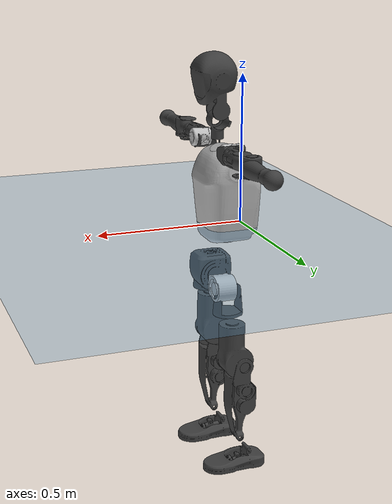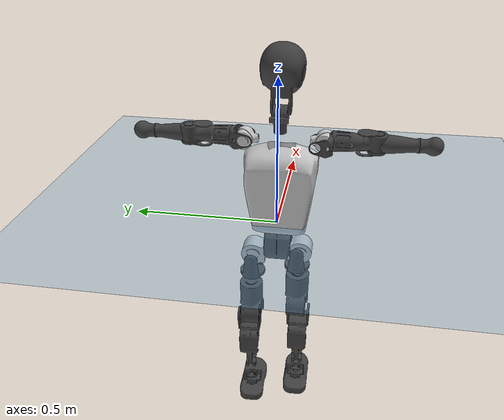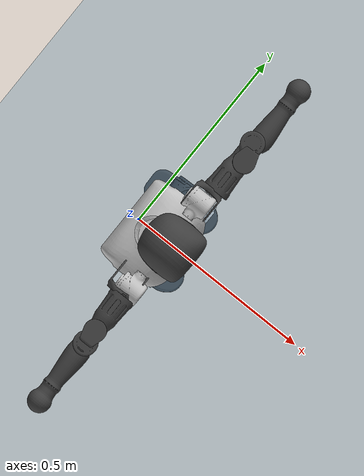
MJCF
<mujoco model="T1">
  <compiler angle="radian" assetdir="assets" balanceinertia="true" inertiafromgeom="false"/>

  <option timestep="0.005" density="1.2" viscosity="2e-05"/>

  <size nkey="1"/>

  <visual>
    <quality shadowsize="8192"/>
    <map shadowclip="0.5"/>
  </visual>

  <default>
    <default class="/">
      <joint armature="0.01" damping="0.01" frictionloss="0.1"/>
      <geom contype="0" conaffinity="0" group="1" solref="-1000 -80"/>
      <site size="0.01 0.005 0.005" group="5"/>
      <general forcelimited="true" biastype="affine" gainprm="25" biasprm="0 -25 -0.6"/>
      <default class="t1">
        <geom rgba="0.25 0.25 0.25 1"/>
        <default class="visual">
          <geom type="mesh" group="2"/>
        </default>
        <default class="collision">
          <geom group="3"/>
        </default>
        <default class="foot">
          <geom size="0.1115 0.05 0.015" type="box" condim="6" group="4" priority="1" solimp="0.015 1 0.015"/>
        </default>
        <default class="reward_collision_sphere">
          <geom group="5" rgba="1 0 0 1"/>
        </default>
      </default>
    </default>
  </default>

  <asset>
    <texture type="skybox" colorspace="auto" name="//unnamed_texture_0" builtin="gradient" rgb1="0.95 0.95 0.95" rgb2="0.95 0.95 0.95" width="100" height="600"/>
    <texture type="2d" colorspace="auto" name="texplane" builtin="checker" rgb1="0.345 0.575 0.748" rgb2="0.345 0.575 0.748" markrgb="1 1 1" width="512" height="512"/>
    <material name="MatPlane" class="/" texture="texplane" texuniform="true" texrepeat="2 2" specular="0.9"/>
    <mesh name="Trunk" class="/" file="Trunk.stl"/>
    <mesh name="H1" class="/" file="H1.stl"/>
    <mesh name="H2" class="/" file="H2.stl"/>
    <mesh name="AL1" class="/" file="AL1.stl"/>
    <mesh name="AL2" class="/" file="AL2.stl"/>
    <mesh name="AL3" class="/" file="AL3.stl"/>
    <mesh name="left_hand_link" class="/" file="left_hand_link.stl"/>
    <mesh name="AR1" class="/" file="AR1.stl"/>
    <mesh name="AR2" class="/" file="AR2.stl"/>
    <mesh name="AR3" class="/" file="AR3.stl"/>
    <mesh name="right_hand_link" class="/" file="right_hand_link.stl"/>
    <mesh name="Waist" class="/" file="Waist.stl"/>
    <mesh name="Hip_Pitch_Left" class="/" file="Hip_Pitch_Left.stl"/>
    <mesh name="Hip_Roll_Left" class="/" file="Hip_Roll_Left.stl"/>
    <mesh name="Hip_Yaw_Left" class="/" file="Hip_Yaw_Left.stl"/>
    <mesh name="Shank_Left" class="/" file="Shank_Left.stl"/>
    <mesh name="Ankle_Cross_Left" class="/" file="Ankle_Cross_Left.stl"/>
    <mesh name="left_foot_link" class="/" file="left_foot_link.stl"/>
    <mesh name="Hip_Pitch_Right" class="/" file="Hip_Pitch_Right.stl"/>
    <mesh name="Hip_Roll_Right" class="/" file="Hip_Roll_Right.stl"/>
    <mesh name="Hip_Yaw_Right" class="/" file="Hip_Yaw_Right.stl"/>
    <mesh name="Shank_Right" class="/" file="Shank_Right.stl"/>
    <mesh name="Ankle_Cross_Right" class="/" file="Ankle_Cross_Right.stl"/>
    <mesh name="right_foot_link" class="/" file="right_foot_link.stl"/>
  </asset>

  <worldbody>
    <geom name="floor" class="/" size="100 100 0.125" type="plane" group="0" material="MatPlane"/>
    <light name="toplight_shadow" class="/" pos="0 0 5" dir="0.0990148 0.0990148 -0.990148" type="directional" ambient="0.04 0.04 0.04" diffuse="0.55 0.55 0.55" specular="0.12 0.12 0.12"/>
    <light name="toplight_fill" class="/" pos="0 0 5" dir="0.0990148 0.0990148 -0.990148" type="directional" castshadow="false" ambient="0.04 0.04 0.04" diffuse="0.3 0.3 0.3" specular="0.08 0.08 0.08"/>
    <body name="trunk" childclass="t1" pos="-0.000511315 -0.00532504 -0.0127411" quat="1 0.000138463 -0.000105622 -6.33144e-05">
      <inertial pos="0.0857399 0.0108642 0.125941" quat="0.998184 -0.00707905 -0.0450145 0.0393995" mass="20.3357" diaginertia="0.693441 0.020281 0.184839"/>
      <joint name="//unnamed_joint_0" type="free" armature="0" damping="0" frictionloss="0"/>
      <geom name="//unnamed_geom_1" class="visual" rgba="0.76 0.76 0.76 1" mesh="Trunk"/>
      <geom name="//unnamed_geom_2" class="collision" size="0.0869172 0.11589 0.173834" pos="0.090741 0 0.147563" type="box"/>
      <geom name="//unnamed_geom_3" class="reward_collision_sphere" size="0.133273" pos="0.090741 0 0.122969"/>
      <geom name="//unnamed_geom_4" class="reward_collision_sphere" size="0.0173834" pos="0.090741 0.0624449 0"/>
      <geom name="//unnamed_geom_5" class="reward_collision_sphere" size="0.0173834" pos="0.090741 -0.0624449 0"/>
      <geom name="//unnamed_geom_6" class="reward_collision_sphere" size="0.0173834" pos="0.090741 0.0786071 0.221344"/>
      <geom name="//unnamed_geom_7" class="reward_collision_sphere" size="0.0173834" pos="0.090741 -0.0786071 0.221344"/>
      <site name="imu" pos="0.00273701 -0.0718682 0.0420412" size="0.011589"/>
      <camera name="track" pos="0 -1.46929 0" quat="0.707107 0.707107 0 0" mode="trackcom"/>
      <camera name="ego_camera" pos="0.184507 0 0.51647" quat="-0.5 -0.5 0.5 0.5"/>
      <body name="H1" pos="0.0894226 0.00994286 0.305903" quat="0.999975 -0.00354815 -0.000625995 -0.0060385">
        <inertial pos="-0.000604664 0.00292782 0.0620695" quat="0.784218 -0.0152226 -0.0155193 0.620104" mass="0.888009" diaginertia="0.00232891 4.58326e-05 0.000496208"/>
        <joint name="AAHead_yaw" pos="0 0 0" axis="-0.0315848 -0.0199377 0.999302" stiffness="0.0026698" range="-1.73942 1.24652" armature="0.0129731" damping="0.070755" frictionloss="0.180342"/>
        <geom name="//unnamed_geom_8" class="visual" mesh="H1"/>
        <body name="H2" pos="-0.00249656 -0.00325181 0.0937112" quat="0.999963 0.00490495 0.00626398 -0.00337648">
          <inertial pos="0.0203545 -0.0108562 0.10861" quat="0.979465 0.157098 -0.0806148 -0.0973103" mass="0.952323" diaginertia="0.0154712 0.000379287 0.00495683"/>
          <joint name="Head_pitch" pos="0 0 0" axis="-0.0532586 -0.998036 0.0329833" stiffness="0.0553953" range="-1.33891 0.31942" armature="0.0105871" damping="0.00372822" frictionloss="0.104194"/>
          <geom name="//unnamed_geom_9" class="visual" mesh="H2"/>
          <geom name="//unnamed_geom_10" class="collision" size="0.0927116" pos="0.0151235 0 0.135266"/>
          <geom name="//unnamed_geom_11" class="reward_collision_sphere" size="0.104301" pos="0.030247 0 0.122969"/>
        </body>
      </body>
      <body name="AL1" pos="0.0893799 0.0831536 0.280806" quat="0.999999 -0.000589853 0.00109621 0.000856729">
        <inertial pos="-0.0082458 0.0434404 -0.000424764" quat="0.495469 0.513917 -0.446763 0.539261" mass="0.914777" diaginertia="0.013944 0.000318564 0.000982662"/>
        <joint name="Left_Shoulder_Pitch" pos="0 0 0" axis="0.0501464 0.998708 -0.00822889" stiffness="0.0506154" range="-3.62077 1.21289" armature="0.0190098" damping="0.0588842" frictionloss="0.168344"/>
        <geom name="//unnamed_geom_12" class="visual" rgba="0.76 0.76 0.76 1" mesh="AL1"/>
        <body name="AL2" pos="0.00229535 0.0375965 -0.000244366" quat="0.999972 -0.00183823 -0.00714272 -0.00130804">
          <inertial pos="-0.0107598 0.0178061 0.000613472" quat="0.505857 0.49142 -0.519128 0.482825" mass="0.303195" diaginertia="0.00383757 9.12865e-05 0.000550642"/>
          <joint name="Left_Shoulder_Roll" pos="0 0 0" axis="-0.999977 0.00684958 -0.000240802" stiffness="0.026332" range="-1.58666 1.85208" armature="0.00489038" damping="0" frictionloss="0.140303"/>
          <geom name="//unnamed_geom_13" class="visual" mesh="AL2"/>
          <body name="AL3" pos="0.0118715 0.0529739 -0.000186302" quat="0.999974 0.00138815 -0.00109507 0.00701783">
            <inertial pos="-0.0155666 0.0573415 -0.00966449" quat="0.729682 0.679451 -0.0713423 -0.0286482" mass="1.2622" diaginertia="0.087108 0.00168884 0.00132601"/>
            <joint name="Left_Elbow_Pitch" pos="0 0 0" axis="-0.0311463 -0.999463 0.010174" range="-2.21507 1.94046" armature="0.004231" damping="0" frictionloss="0.0204966"/>
            <geom name="//unnamed_geom_14" class="visual" mesh="AL3"/>
            <geom name="//unnamed_geom_15" class="collision" size="0.0347669 0.0869172" pos="0 0.0367323 0" quat="0.707105 0.707108 0 0" type="cylinder"/>
            <geom name="//unnamed_geom_16" class="reward_collision_sphere" size="0.0417202"/>
            <body name="left_hand_link" pos="0.0111899 0.0995749 -0.00400956" quat="0.999967 0.00555667 0.00313895 0.00498503">
              <inertial pos="0.00542516 0.0682972 -0.00246722" quat="0.689925 0.723671 0.00285474 0.0171952" mass="0.567209" diaginertia="0.0514316 0.0014478 0.000706684"/>
              <joint name="Left_Elbow_Yaw" pos="0 0 0" axis="-0.027534 0.063731 0.997587" range="-2.24685 -0.327694" armature="0.0187744" damping="0.0800599" frictionloss="0.0589487"/>
              <geom name="//unnamed_geom_17" class="visual" mesh="left_hand_link"/>
              <geom name="//unnamed_geom_18" class="collision" size="0.0347669 0.101403" pos="0 0.095504 0" quat="0.707105 0.707108 0 0" type="cylinder"/>
              <geom name="//unnamed_geom_19" class="reward_collision_sphere" size="0.0579448"/>
              <geom name="//unnamed_geom_20" class="reward_collision_sphere" size="0.0405613" pos="0 0.0808111 0"/>
              <geom name="//unnamed_geom_21" class="reward_collision_sphere" size="0.0405613" pos="0 0.157949 0"/>
            </body>
          </body>
        </body>
      </body>
      <body name="AR1" pos="0.0918588 -0.0909522 0.284471" quat="0.999999 0.00123972 -0.000157707 0.000812746">
        <inertial pos="-0.00110004 -0.0189799 -0.00185251" quat="0.501171 0.479199 -0.494911 0.523697" mass="0.724727" diaginertia="0.0111784 0.000312248 0.000851988"/>
        <joint name="Right_Shoulder_Pitch" pos="0 0 0" axis="-0.0700752 -0.996458 0.0464838" stiffness="0.0465027" range="-1.21618 3.00113" armature="0.0144951" damping="0" frictionloss="0.207719"/>
        <geom name="//unnamed_geom_22" class="visual" rgba="0.76 0.76 0.76 1" mesh="AR1"/>
        <body name="AR2" pos="-0.0171271 -0.0193016 -0.00645762" quat="1 -2.21136e-06 -0.000466502 9.41799e-05">
          <inertial pos="-0.006722 -0.0290745 -0.00314743" quat="0.494591 0.467566 -0.52625 0.509729" mass="0.162111" diaginertia="0.00259106 6.69968e-05 0.00041577"/>
          <joint name="Right_Shoulder_Roll" pos="0 0 0" axis="-0.997658 0.0683935 -0.000768944" stiffness="0.0664136" range="-1.75415 1.32105" armature="0.0145157" damping="0.0782549" frictionloss="0.0379278"/>
          <geom name="//unnamed_geom_23" class="visual" mesh="AR2"/>
          <body name="AR3" pos="0.0140322 -0.0501775 0.00925039" quat="0.999987 -0.00382029 -0.000726555 0.00315917">
            <inertial pos="0.000737834 -0.0757067 -0.00123905" quat="0.716318 0.696477 0.0393868 0.0160027" mass="1.03504" diaginertia="0.0788264 0.00213844 0.00137144"/>
            <joint name="Right_Elbow_Pitch" pos="0 0 0" axis="-0.0173852 0.999845 0.00275582" stiffness="0.0881782" range="-2.01069 2.54869" armature="0.0137404" damping="0.0295649" frictionloss="0.119046"/>
            <geom name="//unnamed_geom_24" class="visual" mesh="AR3"/>
            <geom name="//unnamed_geom_25" class="collision" size="0.0347669 0.0869172" pos="0 -0.0367323 0" quat="0.707105 0.707108 0 0" type="cylinder"/>
            <geom name="//unnamed_geom_26" class="reward_collision_sphere" size="0.0417202"/>
            <body name="right_hand_link" pos="-0.000668057 -0.108608 -0.000401628" quat="1 0.000409549 -0.000229282 -0.000202779">
              <inertial pos="0.00400422 -0.0821516 0.0165994" quat="0.694496 0.717441 -0.0205836 0.0502961" mass="0.700645" diaginertia="0.0696284 0.00210116 0.000674214"/>
              <joint name="Right_Elbow_Yaw" pos="0 0 0" axis="-0.0275464 0.053222 0.998203" range="-0.163332 2.15627" armature="0.0147927" damping="0.00599455" frictionloss="0.136752"/>
              <geom name="//unnamed_geom_27" class="visual" mesh="right_hand_link"/>
              <geom name="//unnamed_geom_28" class="collision" size="0.0347669 0.101403" pos="0 -0.095504 0" quat="0.707105 0.707108 0 0" type="cylinder"/>
              <geom name="//unnamed_geom_29" class="reward_collision_sphere" size="0.0579448"/>
              <geom name="//unnamed_geom_30" class="reward_collision_sphere" size="0.0405613" pos="0 -0.0808111 0"/>
              <geom name="//unnamed_geom_31" class="reward_collision_sphere" size="0.0405613" pos="0 -0.157949 0"/>
            </body>
          </body>
        </body>
      </body>
      <body name="Waist" pos="0.112333 0.0139976 -0.147893" quat="0.999979 -0.00135883 -0.000789699 0.00630488">
        <inertial pos="-4.48974e-06 0.0129233 0.00430376" quat="0.983415 -0.000897235 -0.181365 0.000136207" mass="4.11221" diaginertia="0.054371 0.00138915 0.0178349"/>
        <joint name="Waist" pos="0 0 0" axis="-0.049176 -0.0249243 0.998479" range="-1.53505 1.61783" armature="0.00710914" damping="0.0444503" frictionloss="0.206489"/>
        <geom name="//unnamed_geom_32" class="visual" mesh="Waist"/>
        <body name="Hip_Pitch_Left" pos="-0.00832708 0.0932227 -0.0131206" quat="0.999977 -0.00308244 -0.00595042 -0.000859827">
          <inertial pos="-0.00121072 0.000841679 -0.0226199" quat="0.970492 0.233536 0.0538732 0.0265361" mass="1.57675" diaginertia="0.0171031 0.000277278 0.00439464"/>
          <joint name="Left_Hip_Pitch" pos="0 0 0" axis="-0.013557 0.999587 -0.0253547" stiffness="0.0761753" range="-1.71177 1.42805" armature="0.0151832" damping="0" frictionloss="0.0684142"/>
          <geom name="//unnamed_geom_33" class="visual" rgba="0.76 0.76 0.76 1" mesh="Hip_Pitch_Left"/>
          <body name="Hip_Roll_Left" pos="-0.0146066 0.00432752 -0.0350631" quat="0.999963 0.00253369 0.00757552 0.00328657">
            <inertial pos="0.0169365 0.0134521 -0.0727192" quat="0.673737 -0.0400668 -0.0693385 0.734619" mass="0.538445" diaginertia="0.015092 0.000284796 0.00147342"/>
            <joint name="Left_Hip_Roll" pos="0 0 0" axis="-0.996324 0.0772032 0.0371218" stiffness="0.0111523" range="-1.31952 -0.101068" armature="0.00372774" damping="0" frictionloss="0.135782"/>
            <geom name="//unnamed_geom_34" class="visual" mesh="Hip_Roll_Left"/>
            <geom name="//unnamed_geom_35" class="reward_collision_sphere" size="0.0637393"/>
            <body name="Hip_Yaw_Left" pos="-0.0177033 0.00383741 -0.114573" quat="0.99997 -0.000512943 -0.00340777 0.00700431">
              <inertial pos="-0.0160177 0.00396315 -0.0999555" quat="0.705575 -0.0489406 -0.045936 0.70545" mass="3.76726" diaginertia="0.251822 0.00585298 0.00659444"/>
              <joint name="Left_Hip_Yaw" pos="0 0 0" axis="0.0467603 0.00925643 -0.998863" range="-1.12836 1.32145" armature="0.00921426" damping="0.0331901" frictionloss="0.0615323"/>
              <geom name="//unnamed_geom_36" class="visual" mesh="Hip_Yaw_Left"/>
              <geom name="//unnamed_geom_37" class="collision" size="0.0579448 0.0927116" type="cylinder"/>
              <body name="Shank_Left" pos="-0.0298524 0.00732556 -0.148462" quat="0.999999 -0.000756061 0.000218956 0.000969242">
                <inertial pos="-0.0226174 0.0144376 -0.156706" quat="0.997247 -0.00185823 0.00208748 0.0740966" mass="2.7784" diaginertia="0.276813 0.00781929 0.00449622"/>
                <joint name="Left_Knee_Pitch" pos="0 0 0" axis="-0.0166096 0.999844 -0.00599664" range="-0.206699 2.16516" armature="0.0109558" damping="0" frictionloss="0.0928095"/>
                <geom name="//unnamed_geom_38" class="visual" mesh="Shank_Left"/>
                <geom name="//unnamed_geom_39" class="collision" size="0.0579448 0.0869172" pos="0 0 -0.147563" type="cylinder"/>
                <geom name="//unnamed_geom_40" class="reward_collision_sphere" size="0.0753282"/>
                <body name="Ankle_Cross_Left" pos="9.19539e-05 0.000806059 -0.360056" quat="0.999987 0.00103005 -0.00468839 0.00160269">
                  <inertial pos="-0.0179047 -0.00739456 0.000124909" quat="0.443266 0.55787 0.545908 0.440773" mass="0.10135" diaginertia="0.000222234 6.66654e-06 3.46763e-05"/>
                  <joint name="Left_Ankle_Pitch" pos="0 0 0" axis="0.0198169 0.998949 -0.0413409" range="-0.727965 0.20163" armature="0.00934742" damping="0" frictionloss="0.186248"/>
                  <geom name="//unnamed_geom_41" class="visual" mesh="Ankle_Cross_Left"/>
                  <body name="left_foot_link" pos="0.00215666 -0.00997617 -0.0111655" quat="0.999995 0.00103686 0.000475787 -0.00281652">
                    <inertial pos="-0.00814539 -0.0132997 -0.0093339" quat="0.0237402 0.650014 0.0329902 0.758834" mass="1.16128" diaginertia="0.0152789 0.000407489 0.00497114"/>
                    <joint name="Left_Ankle_Roll" pos="0 0 0" axis="-0.998525 0.0263994 -0.0474471" range="-0.290966 0.127396" armature="0.00270207" damping="0" frictionloss="0.0710262"/>
                    <geom name="//unnamed_geom_42" class="visual" mesh="left_foot_link"/>
                    <geom name="left_foot" class="foot" size="0.0911985 0.0625408 0.0216276" pos="0.0151235 0 -0.0184454"/>
                    <geom name="//unnamed_geom_44" class="reward_collision_sphere" size="0.0602626" pos="0.0151235 0 -0.0184454"/>
                    <geom name="//unnamed_geom_45" class="reward_collision_sphere" size="0.0347669" pos="0.143673 -0.0168969 -0.0184454"/>
                    <geom name="//unnamed_geom_46" class="reward_collision_sphere" size="0.0347669" pos="-0.105865 -0.0168969 -0.0184454"/>
                    <site name="left_foot" class="foot" pos="0.0151235 0 -0.0184454" size="0.011589"/>
                  </body>
                </body>
              </body>
            </body>
          </body>
        </body>
        <body name="Hip_Pitch_Right" pos="-0.0138106 -0.084615 0.0127238" quat="0.999999 -0.00126049 6.01668e-06 0.000716177">
          <inertial pos="0.0153213 4.06654e-05 -0.0230605" quat="0.969629 -0.240178 0.0092428 0.0452562" mass="1.96284" diaginertia="0.0162035 0.000351322 0.00389136"/>
          <joint name="Right_Hip_Pitch" pos="0 0 0" axis="0.0116476 -0.9994 -0.0326167" stiffness="0.046986" range="-1.68633 2.00791" armature="0.00195463" damping="0.00915766" frictionloss="0.171063"/>
          <geom name="//unnamed_geom_47" class="visual" rgba="0.76 0.76 0.76 1" mesh="Hip_Pitch_Right"/>
          <body name="Hip_Roll_Right" pos="-0.00465823 0.0101364 -0.0200915" quat="0.999998 -0.000815265 0.000791441 -0.0015709">
            <inertial pos="-0.000806811 0.0157113 -0.0535457" quat="0.693183 0.0425256 0.0469608 0.717971" mass="0.683211" diaginertia="0.015891 0.000384278 0.00175851"/>
            <joint name="Right_Hip_Roll" pos="0 0 0" axis="-0.999755 0.002895 -0.0219393" stiffness="0.0339677" range="-0.128853 1.55887" armature="0.012611" damping="0" frictionloss="0.190642"/>
            <geom name="//unnamed_geom_48" class="visual" mesh="Hip_Roll_Right"/>
            <geom name="//unnamed_geom_49" class="reward_collision_sphere" size="0.0637393"/>
            <body name="Hip_Yaw_Right" pos="-0.0136168 -0.00372836 -0.101828" quat="0.999981 0.00412995 -0.00456235 0.000251063">
              <inertial pos="-0.011071 0.0170579 -0.118797" quat="0.722212 -0.0674249 -0.0224927 0.68801" mass="3.57786" diaginertia="0.250731 0.00665554 0.00961993"/>
              <joint name="Right_Hip_Yaw" pos="0 0 0" axis="-0.00883493 0.0520312 -0.998606" stiffness="0.00319353" range="-0.799612 0.729067" armature="0.0146268" damping="0" frictionloss="0.119634"/>
              <geom name="//unnamed_geom_50" class="visual" mesh="Hip_Yaw_Right"/>
              <geom name="//unnamed_geom_51" class="collision" size="0.0579448 0.0927116" type="cylinder"/>
              <body name="Shank_Right" pos="-0.0207652 -0.0102242 -0.170718" quat="1 -0.000155952 -0.00022834 0.000685206">
                <inertial pos="-0.0101368 0.000202893 -0.141964" quat="0.999568 -0.0130975 -0.0257265 -0.00543521" mass="3.32517" diaginertia="0.396676 0.00959357 0.00647467"/>
                <joint name="Right_Knee_Pitch" pos="0 0 0" axis="0.00340192 -0.999994 -0.000728387" stiffness="0.0704201" range="-2.53534 -0.172835" armature="0.0113906" damping="0" frictionloss="0.103889"/>
                <geom name="//unnamed_geom_52" class="visual" mesh="Shank_Right"/>
                <geom name="//unnamed_geom_53" class="collision" size="0.0579448 0.0869172" pos="0 0 -0.147563" type="cylinder"/>
                <geom name="//unnamed_geom_54" class="reward_collision_sphere" size="0.0753282"/>
                <body name="Ankle_Cross_Right" pos="0.00795478 0.00145728 -0.346267" quat="0.999977 -0.00414598 -0.000304822 0.005334">
                  <inertial pos="0.000534987 -0.00132136 0.00572114" quat="0.377131 0.595498 0.551974 0.44551" mass="0.137266" diaginertia="0.000328942 5.43292e-06 4.52603e-05"/>
                  <joint name="Right_Ankle_Pitch" pos="0 0 0" axis="0.000732628 -0.997732 0.0673077" stiffness="0.0679213" range="-0.590629 0.709221" armature="0.0119107" damping="0.0688369" frictionloss="0.192746"/>
                  <geom name="//unnamed_geom_55" class="visual" mesh="Ankle_Cross_Right"/>
                  <body name="right_foot_link" pos="0.000171717 -0.00159922 -0.0170162" quat="0.999991 -0.00180464 0.00122409 0.00350668">
                    <inertial pos="0.0168985 0.0120508 -0.0111156" quat="0.0169518 0.581438 0.0313064 0.812812" mass="1.0455" diaginertia="0.0229641 0.000554886 0.00762928"/>
                    <joint name="Right_Ankle_Roll" pos="0 0 0" axis="-0.999976 0.00596333 0.00339892" range="-0.326893 0.375362" armature="0.00608558" damping="0" frictionloss="0.103205"/>
                    <geom name="//unnamed_geom_56" class="visual" mesh="right_foot_link"/>
                    <geom name="right_foot" class="foot" size="0.0965828 0.0366255 0.0176796" pos="0.0151235 0 -0.0184454"/>
                    <geom name="//unnamed_geom_58" class="reward_collision_sphere" size="0.0463558"/>
                    <geom name="//unnamed_geom_59" class="reward_collision_sphere" size="0.0347669" pos="0.0151235 0 -0.0184454"/>
                    <geom name="//unnamed_geom_60" class="reward_collision_sphere" size="0.0347669" pos="0.143673 0.0168969 -0.0184454"/>
                    <geom name="//unnamed_geom_61" class="reward_collision_sphere" size="0.0347669" pos="-0.105865 0.0168969 -0.0184454"/>
                    <site name="right_foot" class="foot" pos="0.0151235 0 -0.0184454" size="0.011589"/>
                  </body>
                </body>
              </body>
            </body>
          </body>
        </body>
      </body>
    </body>
  </worldbody>

  <contact>
    <pair class="/" geom1="floor" geom2="left_foot" name="//unnamed_contact_0"/>
    <pair class="/" geom1="floor" geom2="right_foot" name="//unnamed_contact_1"/>
  </contact>

  <actuator>
    <general name="AAHead_yaw" class="/" joint="AAHead_yaw" forcerange="-4.52223 4.52223" gainprm="25.9323" biasprm="0 -25.9323 -0.884429"/>
    <general name="Head_pitch" class="/" joint="Head_pitch" forcerange="-4.36688 4.36688" gainprm="25.9323" biasprm="0 -25.9323 -0.884429"/>
    <general name="Left_Shoulder_Pitch" class="/" joint="Left_Shoulder_Pitch" forcerange="-27.3307 27.3307" gainprm="25.9323" biasprm="0 -25.9323 -0.884429"/>
    <general name="Left_Shoulder_Roll" class="/" joint="Left_Shoulder_Roll" forcerange="-17.1193 17.1193" gainprm="25.9323" biasprm="0 -25.9323 -0.884429"/>
    <general name="Left_Elbow_Pitch" class="/" joint="Left_Elbow_Pitch" forcerange="-8.99879 8.99879" gainprm="25.9323" biasprm="0 -25.9323 -0.884429"/>
    <general name="Left_Elbow_Yaw" class="/" joint="Left_Elbow_Yaw" forcerange="-29.8526 29.8526" gainprm="25.9323" biasprm="0 -25.9323 -0.884429"/>
    <general name="Right_Shoulder_Pitch" class="/" joint="Right_Shoulder_Pitch" forcerange="-33.5474 33.5474" gainprm="25.9323" biasprm="0 -25.9323 -0.884429"/>
    <general name="Right_Shoulder_Roll" class="/" joint="Right_Shoulder_Roll" forcerange="-22.2525 22.2525" gainprm="25.9323" biasprm="0 -25.9323 -0.884429"/>
    <general name="Right_Elbow_Pitch" class="/" joint="Right_Elbow_Pitch" forcerange="-8.74203 8.74203" gainprm="25.9323" biasprm="0 -25.9323 -0.884429"/>
    <general name="Right_Elbow_Yaw" class="/" joint="Right_Elbow_Yaw" forcerange="-14.2493 14.2493" gainprm="25.9323" biasprm="0 -25.9323 -0.884429"/>
    <general name="Waist" class="/" joint="Waist" forcerange="-42.6203 42.6203" gainprm="25.9323" biasprm="0 -25.9323 -0.884429"/>
    <general name="Left_Hip_Pitch" class="/" joint="Left_Hip_Pitch" forcerange="-67.3544 67.3544" gainprm="25.9323" biasprm="0 -25.9323 -0.884429"/>
    <general name="Left_Hip_Roll" class="/" joint="Left_Hip_Roll" forcerange="-15.5816 15.5816" gainprm="25.9323" biasprm="0 -25.9323 -0.884429"/>
    <general name="Left_Hip_Yaw" class="/" joint="Left_Hip_Yaw" forcerange="-56.7666 56.7666" gainprm="25.9323" biasprm="0 -25.9323 -0.884429"/>
    <general name="Left_Knee_Pitch" class="/" joint="Left_Knee_Pitch" forcerange="-35.8302 35.8302" gainprm="25.9323" biasprm="0 -25.9323 -0.884429"/>
    <general name="Left_Ankle_Pitch" class="/" joint="Left_Ankle_Pitch" forcerange="-38.7418 38.7418" gainprm="25.9323" biasprm="0 -25.9323 -0.884429"/>
    <general name="Left_Ankle_Roll" class="/" joint="Left_Ankle_Roll" forcerange="-19.3665 19.3665" gainprm="25.9323" biasprm="0 -25.9323 -0.884429"/>
    <general name="Right_Hip_Pitch" class="/" joint="Right_Hip_Pitch" forcerange="-53.5541 53.5541" gainprm="25.9323" biasprm="0 -25.9323 -0.884429"/>
    <general name="Right_Hip_Roll" class="/" joint="Right_Hip_Roll" forcerange="-48.2474 48.2474" gainprm="25.9323" biasprm="0 -25.9323 -0.884429"/>
    <general name="Right_Hip_Yaw" class="/" joint="Right_Hip_Yaw" forcerange="-48.2056 48.2056" gainprm="25.9323" biasprm="0 -25.9323 -0.884429"/>
    <general name="Right_Knee_Pitch" class="/" joint="Right_Knee_Pitch" forcerange="-33.2032 33.2032" gainprm="25.9323" biasprm="0 -25.9323 -0.884429"/>
    <general name="Right_Ankle_Pitch" class="/" joint="Right_Ankle_Pitch" forcerange="-13.826 13.826" gainprm="25.9323" biasprm="0 -25.9323 -0.884429"/>
    <general name="Right_Ankle_Roll" class="/" joint="Right_Ankle_Roll" forcerange="-27.5311 27.5311" gainprm="25.9323" biasprm="0 -25.9323 -0.884429"/>
  </actuator>

  <sensor>
    <gyro site="imu" name="imu_angular_velocity"/>
    <velocimeter site="imu" name="imu_linear_velocity"/>
    <framelinvel objtype="site" objname="left_foot" name="left_foot_global_linear_velocity"/>
    <framelinvel objtype="site" objname="right_foot" name="right_foot_global_linear_velocity"/>
  </sensor>

  <keyframe>
    <key name="home" qpos="0 0 0.6385 1 0 0 0 0 0 0 1.4 0 -0.4 0 -1.4 0 0.4 0 -0.4 0 0 0.8 -0.4 0 0.4 0 0 -0.8 0.4 0"/>
  </keyframe>
</mujoco>
